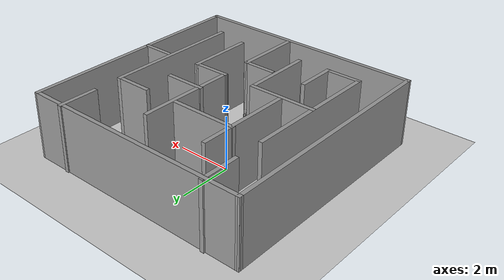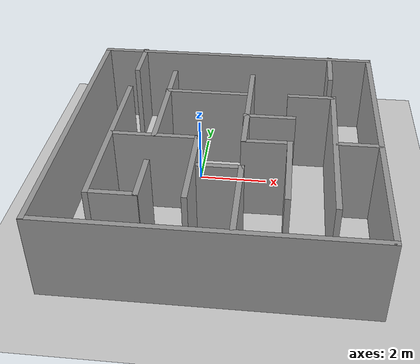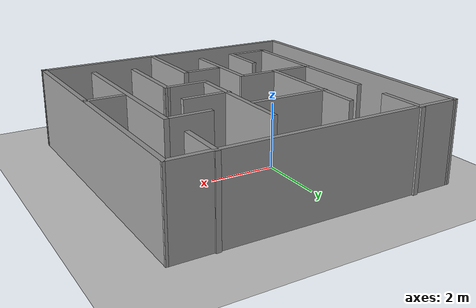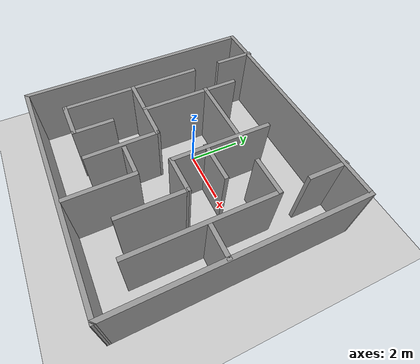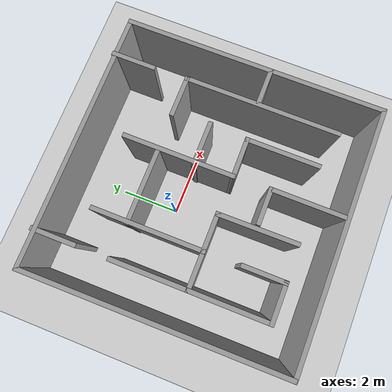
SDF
<sdf version="1.7">
 <world name="default">
  <model name="ground_plane">
   <static>1</static>
   <link name="link">
    <collision name="collision">
     <geometry><plane><normal>0 0 1</normal><size>100 100</size></plane></geometry>
     <surface><friction><ode><mu>100</mu><mu2>50</mu2></ode></friction></surface>
    </collision>
    <visual name="visual">
     <cast_shadows>0</cast_shadows>
     <geometry><plane><normal>0 0 1</normal><size>100 100</size></plane></geometry>
     <material>
      <script><uri>file://media/materials/scripts/gazebo.material</uri><name>Gazebo/Grey</name></script>
     </material>
    </visual>
   </link>
  </model>
  <light name="sun" type="directional">
   <pose>0 0 10 0 -0 0</pose>
   <diffuse>0.8 0.8 0.8 1</diffuse>
   <specular>0.2 0.2 0.2 1</specular>
   <attenuation>
    <range>1000</range>
    <constant>0.9</constant>
    <linear>0.01</linear>
    <quadratic>0.001</quadratic>
   </attenuation>
   <direction>-0.5 0.1 -0.9</direction>
   <spot><inner_angle>0</inner_angle><outer_angle>0</outer_angle><falloff>0</falloff></spot>
  </light>
  <scene><shadows>0</shadows><ambient>0.4 0.4 0.4 1</ambient><background>0.7 0.7 0.7 1</background></scene>
  <physics type="ode">
   <real_time_update_rate>1000</real_time_update_rate>
   <max_step_size>0.001</max_step_size>
   <real_time_factor>1</real_time_factor>
   <ode>
    <solver>
     <type>quick</type>
     <iters>150</iters>
     <precon_iters>0</precon_iters>
     <sor>1.4</sor>
     <use_dynamic_moi_rescaling>1</use_dynamic_moi_rescaling>
    </solver>
    <constraints>
     <cfm>1e-05</cfm>
     <erp>0.2</erp>
     <contact_max_correcting_vel>2000</contact_max_correcting_vel>
     <contact_surface_layer>0.01</contact_surface_layer>
    </constraints>
   </ode>
  </physics>
  <gravity>0 0 -9.8</gravity>
  <magnetic_field>6e-06 2.3e-05 -4.2e-05</magnetic_field>
  <atmosphere type="adiabatic"/>
  <audio><device>default</device></audio>
  <spherical_coordinates>
   <surface_model>EARTH_WGS84</surface_model>
   <latitude_deg>0</latitude_deg>
   <longitude_deg>0</longitude_deg>
   <elevation>0</elevation>
   <heading_deg>0</heading_deg>
  </spherical_coordinates>
  <model name="Untitled">
   <pose>0.78408 -0.828196 0 0 -0 0</pose>
   <link name="Wall_35">
    <collision name="Wall_35_Collision">
     <geometry><box><size>8.81907 0.15 2.5</size></box></geometry>
     <pose>0 0 1.25 0 -0 0</pose>
    </collision>
    <visual name="Wall_35_Visual">
     <pose>0 0 1.25 0 -0 0</pose>
     <geometry><box><size>8.81907 0.15 2.5</size></box></geometry>
     <material>
      <script><uri>file://media/materials/scripts/gazebo.material</uri><name>Gazebo/Grey</name></script>
      <ambient>1 1 1 1</ambient>
     </material>
     <meta><layer>0</layer></meta>
    </visual>
    <pose>-4.3 -0.019291 0 0 -0 -1.56616</pose>
   </link>
   <link name="Wall_36">
    <collision name="Wall_36_Collision">
     <geometry><box><size>8.75 0.15 2.5</size></box></geometry>
     <pose>0 0 1.25 0 -0 0</pose>
    </collision>
    <visual name="Wall_36_Visual">
     <pose>0 0 1.25 0 -0 0</pose>
     <geometry><box><size>8.75 0.15 2.5</size></box></geometry>
     <material>
      <script><uri>file://media/materials/scripts/gazebo.material</uri><name>Gazebo/Grey</name></script>
      <ambient>1 1 1 1</ambient>
     </material>
     <meta><layer>0</layer></meta>
    </visual>
    <pose>0.020114 -4.37389 0 0 -0 0</pose>
   </link>
   <link name="Wall_38">
    <collision name="Wall_38_Collision">
     <geometry><box><size>8.75 0.15 2.5</size></box></geometry>
     <pose>0 0 1.25 0 -0 0</pose>
    </collision>
    <visual name="Wall_38_Visual">
     <pose>0 0 1.25 0 -0 0</pose>
     <geometry><box><size>8.75 0.15 2.5</size></box></geometry>
     <material>
      <script><uri>file://media/materials/scripts/gazebo.material</uri><name>Gazebo/Grey</name></script>
      <ambient>1 1 1 1</ambient>
     </material>
     <meta><layer>0</layer></meta>
    </visual>
    <pose>-0.020114 4.3152 0 0 -0 0</pose>
   </link>
   <link name="Wall_39">
    <collision name="Wall_39_Collision">
     <geometry><box><size>8.81907 0.15 2.5</size></box></geometry>
     <pose>0 0 1.25 0 -0 0</pose>
    </collision>
    <visual name="Wall_39_Visual">
     <pose>0 0 1.25 0 -0 0</pose>
     <geometry><box><size>8.81907 0.15 2.5</size></box></geometry>
     <material>
      <script><uri>file://media/materials/scripts/gazebo.material</uri><name>Gazebo/Grey</name></script>
      <ambient>1 1 1 1</ambient>
     </material>
     <meta><layer>0</layer></meta>
    </visual>
    <pose>4.3 -0.019291 0 0 -0 -1.56616</pose>
   </link>
   <link name="Wall_43">
    <collision name="Wall_43_Collision">
     <geometry><box><size>1.5 0.15 2.5</size></box></geometry>
     <pose>0 0 1.25 0 -0 0</pose>
    </collision>
    <visual name="Wall_43_Visual">
     <pose>0 0 1.25 0 -0 0</pose>
     <geometry><box><size>1.5 0.15 2.5</size></box></geometry>
     <material>
      <script><uri>file://media/materials/scripts/gazebo.material</uri><name>Gazebo/Grey</name></script>
      <ambient>1 1 1 1</ambient>
     </material>
     <meta><layer>0</layer></meta>
    </visual>
    <pose>-3.06605 3.69889 0 0 -0 -1.5708</pose>
   </link>
   <link name="Wall_46">
    <collision name="Wall_46_Collision">
     <geometry><box><size>5.25 0.15 2.5</size></box></geometry>
     <pose>0 0 1.25 0 -0 0</pose>
    </collision>
    <visual name="Wall_46_Visual">
     <pose>0 0 1.25 0 -0 0</pose>
     <geometry><box><size>5.25 0.15 2.5</size></box></geometry>
     <material>
      <script><uri>file://media/materials/scripts/gazebo.material</uri><name>Gazebo/Grey</name></script>
      <ambient>1 1 1 1</ambient>
     </material>
     <meta><layer>0</layer></meta>
    </visual>
    <pose>-3.06605 -0.697343 0 0 -0 -1.5708</pose>
   </link>
   <link name="Wall_47">
    <collision name="Wall_47_Collision">
     <geometry><box><size>1.37757 0.15 2.5</size></box></geometry>
     <pose>0 0 1.25 0 -0 0</pose>
    </collision>
    <visual name="Wall_47_Visual">
     <pose>0 0 1.25 0 -0 0</pose>
     <geometry><box><size>1.37757 0.15 2.5</size></box></geometry>
     <material>
      <script><uri>file://media/materials/scripts/gazebo.material</uri><name>Gazebo/Grey</name></script>
      <ambient>1 1 1 1</ambient>
     </material>
     <meta><layer>0</layer></meta>
    </visual>
    <pose>-2.45226 -3.24734 0 0 -0 0</pose>
   </link>
   <link name="Wall_48">
    <collision name="Wall_48_Collision">
     <geometry><box><size>1.5 0.15 2.5</size></box></geometry>
     <pose>0 0 1.25 0 -0 0</pose>
    </collision>
    <visual name="Wall_48_Visual">
     <pose>0 0 1.25 0 -0 0</pose>
     <geometry><box><size>1.5 0.15 2.5</size></box></geometry>
     <material>
      <script><uri>file://media/materials/scripts/gazebo.material</uri><name>Gazebo/Grey</name></script>
      <ambient>1 1 1 1</ambient>
     </material>
     <meta><layer>0</layer></meta>
    </visual>
    <pose>-1.82099 -2.57234 0 0 -0 1.5708</pose>
   </link>
   <link name="Wall_50">
    <collision name="Wall_50_Collision">
     <geometry><box><size>2.56495 0.15 2.5</size></box></geometry>
     <pose>0 0 1.25 0 -0 0</pose>
    </collision>
    <visual name="Wall_50_Visual">
     <pose>0 0 1.25 0 -0 0</pose>
     <geometry><box><size>2.56495 0.15 2.5</size></box></geometry>
     <material>
      <script><uri>file://media/materials/scripts/gazebo.material</uri><name>Gazebo/Grey</name></script>
      <ambient>1 1 1 1</ambient>
     </material>
     <meta><layer>0</layer></meta>
    </visual>
    <pose>-1.85857 -0.645448 0 0 -0 0</pose>
   </link>
   <link name="Wall_51">
    <collision name="Wall_51_Collision">
     <geometry><box><size>2.68071 0.15 2.5</size></box></geometry>
     <pose>0 0 1.25 0 -0 0</pose>
    </collision>
    <visual name="Wall_51_Visual">
     <pose>0 0 1.25 0 -0 0</pose>
     <geometry><box><size>2.68071 0.15 2.5</size></box></geometry>
     <material>
      <script><uri>file://media/materials/scripts/gazebo.material</uri><name>Gazebo/Grey</name></script>
      <ambient>1 1 1 1</ambient>
     </material>
     <meta><layer>0</layer></meta>
    </visual>
    <pose>-0.639526 -1.93388 0 0 -0 -1.56166</pose>
   </link>
   <link name="Wall_53">
    <collision name="Wall_53_Collision">
     <geometry><box><size>1.25 0.15 2.5</size></box></geometry>
     <pose>0 0 1.25 0 -0 0</pose>
    </collision>
    <visual name="Wall_53_Visual">
     <pose>0 0 1.25 0 -0 0</pose>
     <geometry><box><size>1.25 0.15 2.5</size></box></geometry>
     <material>
      <script><uri>file://media/materials/scripts/gazebo.material</uri><name>Gazebo/Grey</name></script>
      <ambient>1 1 1 1</ambient>
     </material>
     <meta><layer>0</layer></meta>
    </visual>
    <pose>0.097713 -1.8945 0 0 -0 0</pose>
   </link>
   <link name="Wall_54">
    <collision name="Wall_54_Collision">
     <geometry><box><size>2.5 0.15 2.5</size></box></geometry>
     <pose>0 0 1.25 0 -0 0</pose>
    </collision>
    <visual name="Wall_54_Visual">
     <pose>0 0 1.25 0 -0 0</pose>
     <geometry><box><size>2.5 0.15 2.5</size></box></geometry>
     <material>
      <script><uri>file://media/materials/scripts/gazebo.material</uri><name>Gazebo/Grey</name></script>
      <ambient>1 1 1 1</ambient>
     </material>
     <meta><layer>0</layer></meta>
    </visual>
    <pose>0.647713 -3.0695 0 0 -0 -1.5708</pose>
   </link>
   <link name="Wall_59">
    <collision name="Wall_59_Collision">
     <geometry><box><size>3.75 0.15 2.5</size></box></geometry>
     <pose>0 0 1.25 0 -0 0</pose>
    </collision>
    <visual name="Wall_59_Visual">
     <pose>0 0 1.25 0 -0 0</pose>
     <geometry><box><size>3.75 0.15 2.5</size></box></geometry>
     <material>
      <script><uri>file://media/materials/scripts/gazebo.material</uri><name>Gazebo/Grey</name></script>
      <ambient>1 1 1 1</ambient>
     </material>
     <meta><layer>0</layer></meta>
    </visual>
    <pose>-1.84857 1.15645 0 0 -0 1.5708</pose>
   </link>
   <link name="Wall_61">
    <collision name="Wall_61_Collision">
     <geometry><box><size>2.5 0.15 2.5</size></box></geometry>
     <pose>0 0 1.25 0 -0 0</pose>
    </collision>
    <visual name="Wall_61_Visual">
     <pose>0 0 1.25 0 -0 0</pose>
     <geometry><box><size>2.5 0.15 2.5</size></box></geometry>
     <material>
      <script><uri>file://media/materials/scripts/gazebo.material</uri><name>Gazebo/Grey</name></script>
      <ambient>1 1 1 1</ambient>
     </material>
     <meta><layer>0</layer></meta>
    </visual>
    <pose>-0.70017 1.80367 0 0 -0 0</pose>
   </link>
   <link name="Wall_63">
    <collision name="Wall_63_Collision">
     <geometry><box><size>3.75 0.15 2.5</size></box></geometry>
     <pose>0 0 1.25 0 -0 0</pose>
    </collision>
    <visual name="Wall_63_Visual">
     <pose>0 0 1.25 0 -0 0</pose>
     <geometry><box><size>3.75 0.15 2.5</size></box></geometry>
     <material>
      <script><uri>file://media/materials/scripts/gazebo.material</uri><name>Gazebo/Grey</name></script>
      <ambient>1 1 1 1</ambient>
     </material>
     <meta><layer>0</layer></meta>
    </visual>
    <pose>0.611948 1.14748 0 0 -0 -1.5708</pose>
   </link>
   <link name="Wall_66">
    <collision name="Wall_66_Collision">
     <geometry><box><size>1.40311 0.15 2.5</size></box></geometry>
     <pose>0 0 1.25 0 -0 0</pose>
    </collision>
    <visual name="Wall_66_Visual">
     <pose>0 0 1.25 0 -0 0</pose>
     <geometry><box><size>1.40311 0.15 2.5</size></box></geometry>
     <material>
      <script><uri>file://media/materials/scripts/gazebo.material</uri><name>Gazebo/Grey</name></script>
      <ambient>1 1 1 1</ambient>
     </material>
     <meta><layer>0</layer></meta>
    </visual>
    <pose>1.23838 -0.671423 0 0 -0 -3.12931</pose>
   </link>
   <link name="Wall_68">
    <collision name="Wall_68_Collision">
     <geometry><box><size>2.5 0.15 2.5</size></box></geometry>
     <pose>0 0 1.25 0 -0 0</pose>
    </collision>
    <visual name="Wall_68_Visual">
     <pose>0 0 1.25 0 -0 0</pose>
     <geometry><box><size>2.5 0.15 2.5</size></box></geometry>
     <material>
      <script><uri>file://media/materials/scripts/gazebo.material</uri><name>Gazebo/Grey</name></script>
      <ambient>1 1 1 1</ambient>
     </material>
     <meta><layer>0</layer></meta>
    </visual>
    <pose>1.86482 -1.83873 0 0 -0 -1.5708</pose>
   </link>
   <link name="Wall_70">
    <collision name="Wall_70_Collision">
     <geometry><box><size>1.5 0.15 2.5</size></box></geometry>
     <pose>0 0 1.25 0 -0 0</pose>
    </collision>
    <visual name="Wall_70_Visual">
     <pose>0 0 1.25 0 -0 0</pose>
     <geometry><box><size>1.5 0.15 2.5</size></box></geometry>
     <material>
      <script><uri>file://media/materials/scripts/gazebo.material</uri><name>Gazebo/Grey</name></script>
      <ambient>1 1 1 1</ambient>
     </material>
     <meta><layer>0</layer></meta>
    </visual>
    <pose>1.24971 0.599782 0 0 -0 0</pose>
   </link>
   <link name="Wall_72">
    <collision name="Wall_72_Collision">
     <geometry><box><size>1.39943 0.15 2.5</size></box></geometry>
     <pose>0 0 1.25 0 -0 0</pose>
    </collision>
    <visual name="Wall_72_Visual">
     <pose>0 0 1.25 0 -0 0</pose>
     <geometry><box><size>1.39943 0.15 2.5</size></box></geometry>
     <material>
      <script><uri>file://media/materials/scripts/gazebo.material</uri><name>Gazebo/Grey</name></script>
      <ambient>1 1 1 1</ambient>
     </material>
     <meta><layer>0</layer></meta>
    </visual>
    <pose>2.43634 1.83669 0 0 -0 0</pose>
   </link>
   <link name="Wall_74">
    <collision name="Wall_74_Collision">
     <geometry><box><size>5.25 0.15 2.5</size></box></geometry>
     <pose>0 0 1.25 0 -0 0</pose>
    </collision>
    <visual name="Wall_74_Visual">
     <pose>0 0 1.25 0 -0 0</pose>
     <geometry><box><size>5.25 0.15 2.5</size></box></geometry>
     <material>
      <script><uri>file://media/materials/scripts/gazebo.material</uri><name>Gazebo/Grey</name></script>
      <ambient>1 1 1 1</ambient>
     </material>
     <meta><layer>0</layer></meta>
    </visual>
    <pose>3.08117 -0.713309 0 0 -0 -1.5708</pose>
   </link>
   <link name="Wall_76">
    <collision name="Wall_76_Collision">
     <geometry><box><size>1.5 0.15 2.5</size></box></geometry>
     <pose>0 0 1.25 0 -0 0</pose>
    </collision>
    <visual name="Wall_76_Visual">
     <pose>0 0 1.25 0 -0 0</pose>
     <geometry><box><size>1.5 0.15 2.5</size></box></geometry>
     <material>
      <script><uri>file://media/materials/scripts/gazebo.material</uri><name>Gazebo/Grey</name></script>
      <ambient>1 1 1 1</ambient>
     </material>
     <meta><layer>0</layer></meta>
    </visual>
    <pose>3.03557 3.68121 0 0 -0 -1.5708</pose>
   </link>
   <link name="Wall_78">
    <collision name="Wall_78_Collision">
     <geometry><box><size>1.25 0.15 2.5</size></box></geometry>
     <pose>0 0 1.25 0 -0 0</pose>
    </collision>
    <visual name="Wall_78_Visual">
     <pose>0 0 1.25 0 -0 0</pose>
     <geometry><box><size>1.25 0.15 2.5</size></box></geometry>
     <material>
      <script><uri>file://media/materials/scripts/gazebo.material</uri><name>Gazebo/Grey</name></script>
      <ambient>1 1 1 1</ambient>
     </material>
     <meta><layer>0</layer></meta>
    </visual>
    <pose>3.71989 -0.579752 0 0 -0 0</pose>
   </link>
   <static>1</static>
  </model>
 </world>
</sdf>
